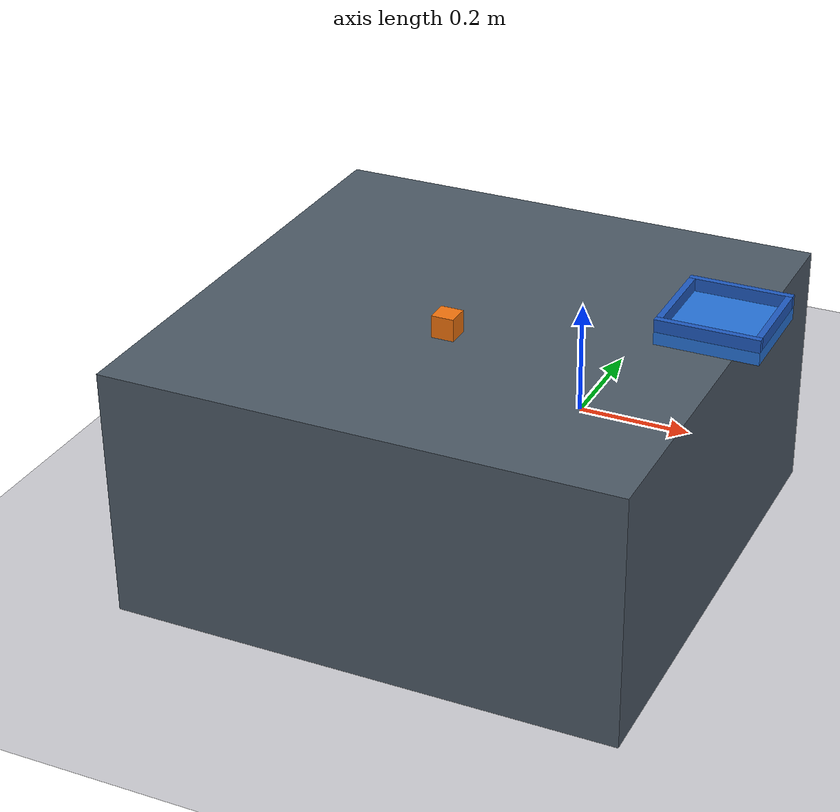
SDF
<?xml version="1.0" ?>
<sdf version="1.8">
  <world name="pick_and_place_world">

    <!-- Physics Engine Settings (ODE optimized for stable manipulation) -->
    <physics type="ode">
      <max_step_size>0.001</max_step_size>
      <real_time_factor>1.0</real_time_factor>
      <real_time_update_rate>1000</real_time_update_rate>
      <ode>
        <solver>
          <type>quick</type>
          <iters>50</iters>
          <sor>1.3</sor>
        </solver>
        <constraints>
          <cfm>0.00001</cfm>
          <erp>0.2</erp>
          <contact_max_correcting_vel>100.0</contact_max_correcting_vel>
          <contact_surface_layer>0.001</contact_surface_layer>
        </constraints>
      </ode>
    </physics>

    <!-- Essential Gazebo Sim Systems -->
    <plugin name="gz::sim::systems::Physics" filename="gz-sim-physics-system"/>
    <plugin name="gz::sim::systems::UserCommands" filename="gz-sim-user-commands-system"/>
    <plugin name="gz::sim::systems::SceneBroadcaster" filename="gz-sim-scene-broadcaster-system"/>
    <plugin name="gz::sim::systems::Contact" filename="gz-sim-contact-system"/>

    <!-- Gravity & Atmosphere -->
    <gravity>0 0 -9.81</gravity>

    <!-- Ambient Scene Lighting -->
    <scene>
      <ambient>0.4 0.4 0.45 1.0</ambient>
      <background>0.7 0.75 0.8 1.0</background>
      <shadows>true</shadows>
      <grid>true</grid>
    </scene>

    <!-- Sun Directional Light -->
    <light name="sun" type="directional">
      <cast_shadows>true</cast_shadows>
      <pose>0 0 10 0 0 0</pose>
      <diffuse>0.9 0.9 0.9 1.0</diffuse>
      <specular>0.3 0.3 0.3 1.0</specular>
      <direction>-0.5 0.1 -0.9</direction>
      <attenuation>
        <range>1000</range>
        <constant>0.9</constant>
        <linear>0.01</linear>
        <quadratic>0.001</quadratic>
      </attenuation>
    </light>

    <!-- Ground Plane -->
    <model name="ground_plane">
      <static>true</static>
      <link name="link">
        <collision name="collision">
          <geometry>
            <plane>
              <normal>0 0 1</normal>
              <size>20 20</size>
            </plane>
          </geometry>
          <surface>
            <friction>
              <ode>
                <mu>1.0</mu>
                <mu2>1.0</mu2>
              </ode>
            </friction>
            <contact>
              <ode>
                <kp>10000000.0</kp>
                <kd>1.0</kd>
              </ode>
            </contact>
          </surface>
        </collision>
        <visual name="visual">
          <geometry>
            <plane>
              <normal>0 0 1</normal>
              <size>20 20</size>
            </plane>
          </geometry>
          <material>
            <ambient>0.8 0.8 0.82 1.0</ambient>
            <diffuse>0.8 0.8 0.82 1.0</diffuse>
            <specular>0.2 0.2 0.2 1.0</specular>
          </material>
        </visual>
      </link>
    </model>

    <!-- Work Table (Center at X=0.0m, Y=-0.45m, Z=0.20m, size: 0.8m x 0.8m x 0.40m, top surface at Z=0.40m) -->
    <model name="work_table">
      <static>true</static>
      <pose>0.0 -0.45 0.20 0 0 0</pose>
      <link name="table_link">
        <collision name="table_collision">
          <geometry>
            <box>
              <size>0.8 0.8 0.40</size>
            </box>
          </geometry>
          <surface>
            <friction>
              <ode>
                <mu>1.0</mu>
                <mu2>1.0</mu2>
              </ode>
            </friction>
            <contact>
              <ode>
                <kp>10000000.0</kp>
                <kd>1.0</kd>
              </ode>
            </contact>
          </surface>
        </collision>
        <visual name="table_visual">
          <geometry>
            <box>
              <size>0.8 0.8 0.40</size>
            </box>
          </geometry>
          <material>
            <ambient>0.25 0.28 0.32 1.0</ambient>
            <diffuse>0.30 0.35 0.40 1.0</diffuse>
            <specular>0.4 0.4 0.4 1.0</specular>
          </material>
        </visual>
      </link>
    </model>

    <!-- Target Graspable Orange Cube (0.035m x 0.035m x 0.035m, mass: 0.025kg, placed at X=0.0m, Y=-0.54m, Z=0.42m) -->
    <model name="target_cube">
      <pose>0.0 -0.54 0.42 0 0 0</pose>
      <link name="cube_link">
        <inertial>
          <mass>0.025</mass>
          <inertia>
            <ixx>5.104e-6</ixx>
            <ixy>0.0</ixy>
            <ixz>0.0</ixz>
            <iyy>5.104e-6</iyy>
            <iyz>0.0</iyz>
            <izz>5.104e-6</izz>
          </inertia>
        </inertial>
        <collision name="cube_collision">
          <geometry>
            <box>
              <size>0.035 0.035 0.035</size>
            </box>
          </geometry>
          <surface>
            <friction>
              <ode>
                <mu>1.2</mu>
                <mu2>1.2</mu2>
              </ode>
            </friction>
            <contact>
              <ode>
                <kp>1000000.0</kp>
                <kd>1.0</kd>
                <min_depth>0.001</min_depth>
              </ode>
            </contact>
          </surface>
        </collision>
        <visual name="cube_visual">
          <geometry>
            <box>
              <size>0.035 0.035 0.035</size>
            </box>
          </geometry>
          <material>
            <ambient>0.95 0.45 0.05 1.0</ambient>
            <diffuse>0.95 0.45 0.05 1.0</diffuse>
            <specular>0.5 0.5 0.5 1.0</specular>
          </material>
        </visual>
      </link>
    </model>

    <!-- Target Destination Bin / Basket (Position at X=0.36m, Y=-0.36m, Z=0.42m aligned with Phase 5 & 6) -->
    <model name="destination_bin">
      <static>true</static>
      <pose>0.36 -0.36 0.41 0 0 0</pose>
      <link name="bin_link">
        <!-- Base Tray Plate -->
        <collision name="bin_base_collision">
          <geometry>
            <box>
              <size>0.16 0.16 0.02</size>
            </box>
          </geometry>
          <surface>
            <friction>
              <ode>
                <mu>1.0</mu>
                <mu2>1.0</mu2>
              </ode>
            </friction>
          </surface>
        </collision>
        <visual name="bin_base_visual">
          <geometry>
            <box>
              <size>0.16 0.16 0.02</size>
            </box>
          </geometry>
          <material>
            <ambient>0.15 0.45 0.85 1.0</ambient>
            <diffuse>0.15 0.45 0.85 1.0</diffuse>
            <specular>0.4 0.4 0.4 1.0</specular>
          </material>
        </visual>

        <!-- Retaining Lip Walls -->
        <visual name="wall_north_vis">
          <pose>0 0.075 0.02 0 0 0</pose>
          <geometry>
            <box>
              <size>0.16 0.01 0.02</size>
            </box>
          </geometry>
          <material>
            <ambient>0.12 0.35 0.75 1.0</ambient>
            <diffuse>0.12 0.35 0.75 1.0</diffuse>
          </material>
        </visual>
        <collision name="wall_north_col">
          <pose>0 0.075 0.02 0 0 0</pose>
          <geometry>
            <box>
              <size>0.16 0.01 0.02</size>
            </box>
          </geometry>
        </collision>

        <visual name="wall_south_vis">
          <pose>0 -0.075 0.02 0 0 0</pose>
          <geometry>
            <box>
              <size>0.16 0.01 0.02</size>
            </box>
          </geometry>
          <material>
            <ambient>0.12 0.35 0.75 1.0</ambient>
            <diffuse>0.12 0.35 0.75 1.0</diffuse>
          </material>
        </visual>
        <collision name="wall_south_col">
          <pose>0 -0.075 0.02 0 0 0</pose>
          <geometry>
            <box>
              <size>0.16 0.01 0.02</size>
            </box>
          </geometry>
        </collision>

        <visual name="wall_east_vis">
          <pose>0.075 0 0.02 0 0 0</pose>
          <geometry>
            <box>
              <size>0.01 0.14 0.02</size>
            </box>
          </geometry>
          <material>
            <ambient>0.12 0.35 0.75 1.0</ambient>
            <diffuse>0.12 0.35 0.75 1.0</diffuse>
          </material>
        </visual>
        <collision name="wall_east_col">
          <pose>0.075 0 0.02 0 0 0</pose>
          <geometry>
            <box>
              <size>0.01 0.14 0.02</size>
            </box>
          </geometry>
        </collision>

        <visual name="wall_west_vis">
          <pose>-0.075 0 0.02 0 0 0</pose>
          <geometry>
            <box>
              <size>0.01 0.14 0.02</size>
            </box>
          </geometry>
          <material>
            <ambient>0.12 0.35 0.75 1.0</ambient>
            <diffuse>0.12 0.35 0.75 1.0</diffuse>
          </material>
        </visual>
        <collision name="wall_west_col">
          <pose>-0.075 0 0.02 0 0 0</pose>
          <geometry>
            <box>
              <size>0.01 0.14 0.02</size>
            </box>
          </geometry>
        </collision>
      </link>
    </model>

  </world>
</sdf>
